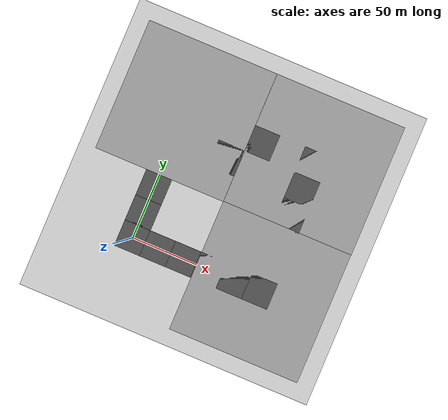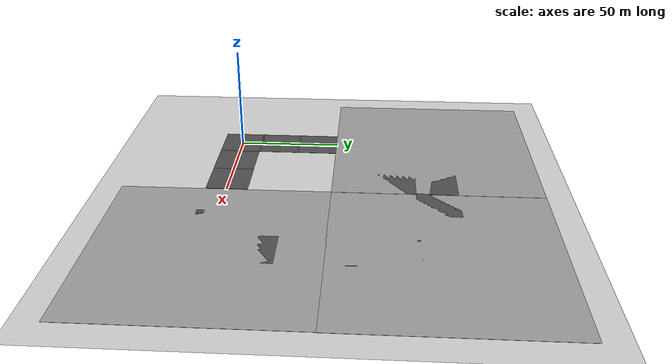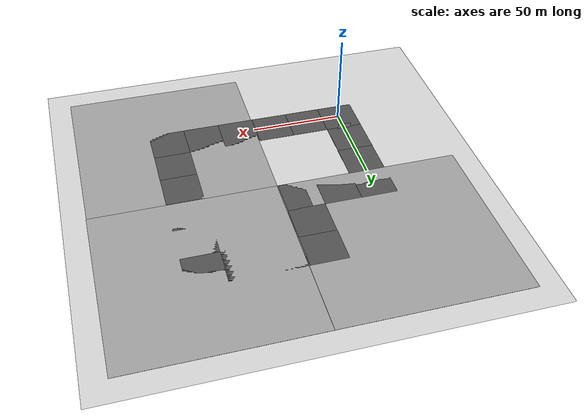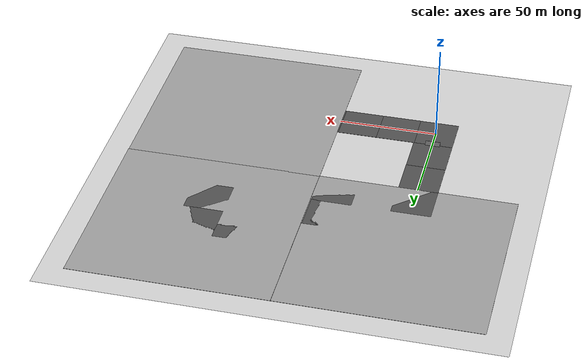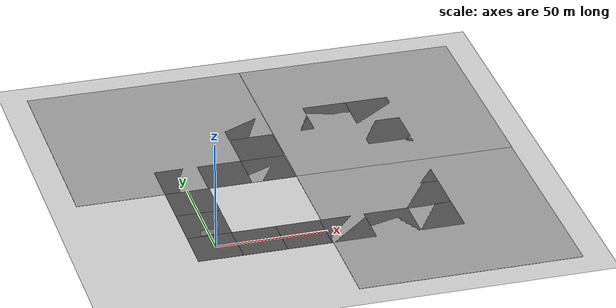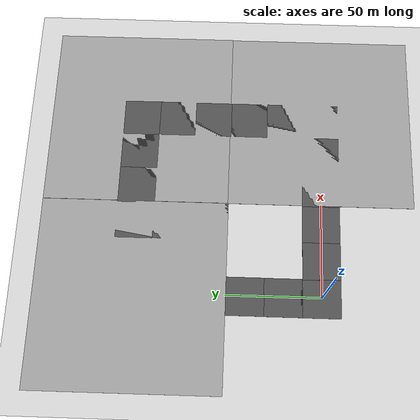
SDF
<sdf version="1.6">
 <world name="default">
  <light name="sun" type="directional">
   <pose>0 0 10 0 -0 0</pose>
   <diffuse>0.8 0.8 0.8 1</diffuse>
   <specular>0.2 0.2 0.2 1</specular>
   <attenuation>
    <range>1000</range>
    <constant>0.9</constant>
    <linear>0.01</linear>
    <quadratic>0.001</quadratic>
   </attenuation>
   <direction>-0.5 0.1 -0.9</direction>
  </light>
  <model name="ground_plane">
   <static>1</static>
   <link name="link">
    <collision name="collision">
     <geometry><plane><normal>0 0 1</normal><size>100 100</size></plane></geometry>
     <surface><friction><ode><mu>100</mu><mu2>50</mu2></ode></friction></surface>
    </collision>
    <visual name="visual">
     <cast_shadows>0</cast_shadows>
     <geometry><plane><normal>0 0 1</normal><size>100 100</size></plane></geometry>
     <material>
      <script><uri>file://media/materials/scripts/gazebo.material</uri><name>Gazebo/Grey</name></script>
     </material>
    </visual>
   </link>
  </model>
  <gravity>0 0 -9.8</gravity>
  <magnetic_field>6e-06 2.3e-05 -4.2e-05</magnetic_field>
  <atmosphere type="adiabatic"/>
  <physics name="default_physics" default="0" type="ode">
   <max_step_size>0.001</max_step_size>
   <real_time_factor>1</real_time_factor>
   <real_time_update_rate>1000</real_time_update_rate>
  </physics>
  <scene><ambient>0.4 0.4 0.4 1</ambient><background>0.7 0.7 0.7 1</background><shadows>1</shadows></scene>
  <audio><device>default</device></audio>
  <spherical_coordinates>
   <surface_model>EARTH_WGS84</surface_model>
   <latitude_deg>0</latitude_deg>
   <longitude_deg>0</longitude_deg>
   <elevation>0</elevation>
   <heading_deg>0</heading_deg>
  </spherical_coordinates>
  <model name="asphalt_plane">
   <static>1</static>
   <link name="link">
    <collision name="collision"><geometry><box><size>20 20 0.1</size></box></geometry></collision>
    <visual name="visual">
     <cast_shadows>0</cast_shadows>
     <geometry><box><size>20 20 0.1</size></box></geometry>
     <material>
      <script>
       <uri>model://asphalt_plane/materials/scripts</uri>
       <uri>model://asphalt_plane/materials/textures</uri>
       <name>vrc/asphalt</name>
      </script>
     </material>
    </visual>
   </link>
   <pose>-0.307951 0.041854 0 0 -0 0</pose>
  </model>
  <model name="asphalt_plane_clone">
   <static>1</static>
   <link name="link">
    <collision name="collision"><geometry><box><size>20 20 0.1</size></box></geometry></collision>
    <visual name="visual">
     <cast_shadows>0</cast_shadows>
     <geometry><box><size>20 20 0.1</size></box></geometry>
     <material>
      <script>
       <uri>model://asphalt_plane/materials/scripts</uri>
       <uri>model://asphalt_plane/materials/textures</uri>
       <name>vrc/asphalt</name>
      </script>
     </material>
    </visual>
   </link>
   <pose>19.3698 -0.017446 0 0 -0 0</pose>
  </model>
  <model name="asphalt_plane_clone_0">
   <static>1</static>
   <link name="link">
    <collision name="collision"><geometry><box><size>20 20 0.1</size></box></geometry></collision>
    <visual name="visual">
     <cast_shadows>0</cast_shadows>
     <geometry><box><size>20 20 0.1</size></box></geometry>
     <material>
      <script>
       <uri>model://asphalt_plane/materials/scripts</uri>
       <uri>model://asphalt_plane/materials/textures</uri>
       <name>vrc/asphalt</name>
      </script>
     </material>
    </visual>
   </link>
   <pose>39.3119 0.01957 0 0 -0 0</pose>
  </model>
  <model name="ground_plane_0">
   <static>1</static>
   <link name="link">
    <collision name="collision">
     <geometry><plane><normal>0 0 1</normal><size>100 100</size></plane></geometry>
     <surface>
      <contact><collide_bitmask>65535</collide_bitmask></contact>
      <friction><ode><mu>100</mu><mu2>50</mu2></ode></friction>
     </surface>
    </collision>
    <visual name="visual">
     <cast_shadows>0</cast_shadows>
     <geometry><plane><normal>0 0 1</normal><size>100 100</size></plane></geometry>
     <material>
      <script><uri>file://media/materials/scripts/gazebo.material</uri><name>Gazebo/Grey</name></script>
     </material>
    </visual>
   </link>
   <pose>99.8119 -0.012743 0 0 -0 0</pose>
  </model>
  <model name="ground_plane_1">
   <static>1</static>
   <link name="link">
    <collision name="collision">
     <geometry><plane><normal>0 0 1</normal><size>100 100</size></plane></geometry>
     <surface>
      <contact><collide_bitmask>65535</collide_bitmask></contact>
      <friction><ode><mu>100</mu><mu2>50</mu2></ode></friction>
     </surface>
    </collision>
    <visual name="visual">
     <cast_shadows>0</cast_shadows>
     <geometry><plane><normal>0 0 1</normal><size>100 100</size></plane></geometry>
     <material>
      <script><uri>file://media/materials/scripts/gazebo.material</uri><name>Gazebo/Grey</name></script>
     </material>
    </visual>
   </link>
   <pose>-0.11187 99.6243 0 0 -0 0</pose>
  </model>
  <model name="ground_plane_2">
   <static>1</static>
   <link name="link">
    <collision name="collision">
     <geometry><plane><normal>0 0 1</normal><size>100 100</size></plane></geometry>
     <surface>
      <contact><collide_bitmask>65535</collide_bitmask></contact>
      <friction><ode><mu>100</mu><mu2>50</mu2></ode></friction>
     </surface>
    </collision>
    <visual name="visual">
     <cast_shadows>0</cast_shadows>
     <geometry><plane><normal>0 0 1</normal><size>100 100</size></plane></geometry>
     <material>
      <script><uri>file://media/materials/scripts/gazebo.material</uri><name>Gazebo/Grey</name></script>
     </material>
    </visual>
   </link>
   <pose>99.9943 99.6471 0 0 -0 0</pose>
  </model>
  <model name="asphalt_plane_0">
   <static>1</static>
   <link name="link">
    <collision name="collision"><geometry><box><size>20 20 0.1</size></box></geometry></collision>
    <visual name="visual">
     <cast_shadows>0</cast_shadows>
     <geometry><box><size>20 20 0.1</size></box></geometry>
     <material>
      <script>
       <uri>model://asphalt_plane/materials/scripts</uri>
       <uri>model://asphalt_plane/materials/textures</uri>
       <name>vrc/asphalt</name>
      </script>
     </material>
    </visual>
   </link>
   <pose>59.262 0.044241 0 0 -0 0</pose>
  </model>
  <model name="asphalt_plane_clone_1">
   <static>1</static>
   <link name="link">
    <collision name="collision"><geometry><box><size>20 20 0.1</size></box></geometry></collision>
    <visual name="visual">
     <cast_shadows>0</cast_shadows>
     <geometry><box><size>20 20 0.1</size></box></geometry>
     <material>
      <script>
       <uri>model://asphalt_plane/materials/scripts</uri>
       <uri>model://asphalt_plane/materials/textures</uri>
       <name>vrc/asphalt</name>
      </script>
     </material>
    </visual>
   </link>
   <pose>79.2518 0.06356 0 0 -0 0</pose>
  </model>
  <model name="asphalt_plane_clone_2">
   <static>1</static>
   <link name="link">
    <collision name="collision"><geometry><box><size>20 20 0.1</size></box></geometry></collision>
    <visual name="visual">
     <cast_shadows>0</cast_shadows>
     <geometry><box><size>20 20 0.1</size></box></geometry>
     <material>
      <script>
       <uri>model://asphalt_plane/materials/scripts</uri>
       <uri>model://asphalt_plane/materials/textures</uri>
       <name>vrc/asphalt</name>
      </script>
     </material>
    </visual>
   </link>
   <pose>99.1357 0.118638 0 0 -0 0</pose>
  </model>
  <model name="asphalt_plane_clone_3">
   <static>1</static>
   <link name="link">
    <collision name="collision"><geometry><box><size>20 20 0.1</size></box></geometry></collision>
    <visual name="visual">
     <cast_shadows>0</cast_shadows>
     <geometry><box><size>20 20 0.1</size></box></geometry>
     <material>
      <script>
       <uri>model://asphalt_plane/materials/scripts</uri>
       <uri>model://asphalt_plane/materials/textures</uri>
       <name>vrc/asphalt</name>
      </script>
     </material>
    </visual>
   </link>
   <pose>99.0662 19.467 0 0 -0 0</pose>
  </model>
  <model name="asphalt_plane_clone_2_clone">
   <static>1</static>
   <link name="link">
    <collision name="collision"><geometry><box><size>20 20 0.1</size></box></geometry></collision>
    <visual name="visual">
     <cast_shadows>0</cast_shadows>
     <geometry><box><size>20 20 0.1</size></box></geometry>
     <material>
      <script>
       <uri>model://asphalt_plane/materials/scripts</uri>
       <uri>model://asphalt_plane/materials/textures</uri>
       <name>vrc/asphalt</name>
      </script>
     </material>
    </visual>
   </link>
   <pose>99.0078 39.3736 0 0 -0 0</pose>
  </model>
  <model name="asphalt_plane_clone_2_clone_0">
   <static>1</static>
   <link name="link">
    <collision name="collision"><geometry><box><size>20 20 0.1</size></box></geometry></collision>
    <visual name="visual">
     <cast_shadows>0</cast_shadows>
     <geometry><box><size>20 20 0.1</size></box></geometry>
     <material>
      <script>
       <uri>model://asphalt_plane/materials/scripts</uri>
       <uri>model://asphalt_plane/materials/textures</uri>
       <name>vrc/asphalt</name>
      </script>
     </material>
    </visual>
   </link>
   <pose>98.978 59.3651 0 0 -0 0</pose>
  </model>
  <model name="asphalt_plane_clone_2_clone_1">
   <static>1</static>
   <link name="link">
    <collision name="collision"><geometry><box><size>20 20 0.1</size></box></geometry></collision>
    <visual name="visual">
     <cast_shadows>0</cast_shadows>
     <geometry><box><size>20 20 0.1</size></box></geometry>
     <material>
      <script>
       <uri>model://asphalt_plane/materials/scripts</uri>
       <uri>model://asphalt_plane/materials/textures</uri>
       <name>vrc/asphalt</name>
      </script>
     </material>
    </visual>
   </link>
   <pose>99.0673 79.3609 0 0 -0 0</pose>
  </model>
  <model name="asphalt_plane_clone_2_clone_2">
   <static>1</static>
   <link name="link">
    <collision name="collision"><geometry><box><size>20 20 0.1</size></box></geometry></collision>
    <visual name="visual">
     <cast_shadows>0</cast_shadows>
     <geometry><box><size>20 20 0.1</size></box></geometry>
     <material>
      <script>
       <uri>model://asphalt_plane/materials/scripts</uri>
       <uri>model://asphalt_plane/materials/textures</uri>
       <name>vrc/asphalt</name>
      </script>
     </material>
    </visual>
   </link>
   <pose>99.0283 99.262 0 0 -0 0</pose>
  </model>
  <model name="asphalt_plane_clone_2_clone_3">
   <static>1</static>
   <link name="link">
    <collision name="collision"><geometry><box><size>20 20 0.1</size></box></geometry></collision>
    <visual name="visual">
     <cast_shadows>0</cast_shadows>
     <geometry><box><size>20 20 0.1</size></box></geometry>
     <material>
      <script>
       <uri>model://asphalt_plane/materials/scripts</uri>
       <uri>model://asphalt_plane/materials/textures</uri>
       <name>vrc/asphalt</name>
      </script>
     </material>
    </visual>
   </link>
   <pose>79.2028 99.323 0 0 -0 0</pose>
  </model>
  <model name="asphalt_plane_clone_2_clone_4">
   <static>1</static>
   <link name="link">
    <collision name="collision"><geometry><box><size>20 20 0.1</size></box></geometry></collision>
    <visual name="visual">
     <cast_shadows>0</cast_shadows>
     <geometry><box><size>20 20 0.1</size></box></geometry>
     <material>
      <script>
       <uri>model://asphalt_plane/materials/scripts</uri>
       <uri>model://asphalt_plane/materials/textures</uri>
       <name>vrc/asphalt</name>
      </script>
     </material>
    </visual>
   </link>
   <pose>59.2136 99.3537 0 0 -0 0</pose>
  </model>
  <model name="asphalt_plane_clone_2_clone_5">
   <static>1</static>
   <link name="link">
    <collision name="collision"><geometry><box><size>20 20 0.1</size></box></geometry></collision>
    <visual name="visual">
     <cast_shadows>0</cast_shadows>
     <geometry><box><size>20 20 0.1</size></box></geometry>
     <material>
      <script>
       <uri>model://asphalt_plane/materials/scripts</uri>
       <uri>model://asphalt_plane/materials/textures</uri>
       <name>vrc/asphalt</name>
      </script>
     </material>
    </visual>
   </link>
   <pose>39.4185 99.251 0 0 -0 0</pose>
  </model>
  <model name="asphalt_plane_clone_2_clone_6">
   <static>1</static>
   <link name="link">
    <collision name="collision"><geometry><box><size>20 20 0.1</size></box></geometry></collision>
    <visual name="visual">
     <cast_shadows>0</cast_shadows>
     <geometry><box><size>20 20 0.1</size></box></geometry>
     <material>
      <script>
       <uri>model://asphalt_plane/materials/scripts</uri>
       <uri>model://asphalt_plane/materials/textures</uri>
       <name>vrc/asphalt</name>
      </script>
     </material>
    </visual>
   </link>
   <pose>39.5213 79.4558 0 0 -0 0</pose>
  </model>
  <model name="asphalt_plane_clone_2_clone_7">
   <static>1</static>
   <link name="link">
    <collision name="collision"><geometry><box><size>20 20 0.1</size></box></geometry></collision>
    <visual name="visual">
     <cast_shadows>0</cast_shadows>
     <geometry><box><size>20 20 0.1</size></box></geometry>
     <material>
      <script>
       <uri>model://asphalt_plane/materials/scripts</uri>
       <uri>model://asphalt_plane/materials/textures</uri>
       <name>vrc/asphalt</name>
      </script>
     </material>
    </visual>
   </link>
   <pose>39.43 59.7941 0 0 -0 0</pose>
  </model>
  <model name="asphalt_plane_clone_2_clone_8">
   <static>1</static>
   <link name="link">
    <collision name="collision"><geometry><box><size>20 20 0.1</size></box></geometry></collision>
    <visual name="visual">
     <cast_shadows>0</cast_shadows>
     <geometry><box><size>20 20 0.1</size></box></geometry>
     <material>
      <script>
       <uri>model://asphalt_plane/materials/scripts</uri>
       <uri>model://asphalt_plane/materials/textures</uri>
       <name>vrc/asphalt</name>
      </script>
     </material>
    </visual>
   </link>
   <pose>19.4711 59.661 0 0 -0 0</pose>
  </model>
  <model name="asphalt_plane_clone_2_clone_9">
   <static>1</static>
   <link name="link">
    <collision name="collision"><geometry><box><size>20 20 0.1</size></box></geometry></collision>
    <visual name="visual">
     <cast_shadows>0</cast_shadows>
     <geometry><box><size>20 20 0.1</size></box></geometry>
     <material>
      <script>
       <uri>model://asphalt_plane/materials/scripts</uri>
       <uri>model://asphalt_plane/materials/textures</uri>
       <name>vrc/asphalt</name>
      </script>
     </material>
    </visual>
   </link>
   <pose>-0.190606 59.7523 0 0 -0 0</pose>
  </model>
  <model name="asphalt_plane_clone_2_clone_10">
   <static>1</static>
   <link name="link">
    <collision name="collision"><geometry><box><size>20 20 0.1</size></box></geometry></collision>
    <visual name="visual">
     <cast_shadows>0</cast_shadows>
     <geometry><box><size>20 20 0.1</size></box></geometry>
     <material>
      <script>
       <uri>model://asphalt_plane/materials/scripts</uri>
       <uri>model://asphalt_plane/materials/textures</uri>
       <name>vrc/asphalt</name>
      </script>
     </material>
    </visual>
   </link>
   <pose>-0.282302 19.9376 0 0 -0 0</pose>
  </model>
  <model name="asphalt_plane_clone_2_clone_11">
   <static>1</static>
   <link name="link">
    <collision name="collision"><geometry><box><size>20 20 0.1</size></box></geometry></collision>
    <visual name="visual">
     <cast_shadows>0</cast_shadows>
     <geometry><box><size>20 20 0.1</size></box></geometry>
     <material>
      <script>
       <uri>model://asphalt_plane/materials/scripts</uri>
       <uri>model://asphalt_plane/materials/textures</uri>
       <name>vrc/asphalt</name>
      </script>
     </material>
    </visual>
   </link>
   <pose>-0.221319 39.7631 0 0 -0 0</pose>
  </model>
  <model name="grey_wall">
   <static>1</static>
   <link name="link">
    <pose>0 0 1.4 0 -0 0</pose>
    <collision name="collision"><geometry><box><size>7.5 0.2 2.8</size></box></geometry></collision>
    <visual name="visual">
     <cast_shadows>0</cast_shadows>
     <geometry><box><size>7.5 0.2 2.8</size></box></geometry>
     <material>
      <script>
       <uri>model://grey_wall/materials/scripts</uri>
       <uri>model://grey_wall/materials/textures</uri>
       <name>vrc/grey_wall</name>
      </script>
     </material>
    </visual>
   </link>
   <pose>-0.255143 10.6772 0 0 -0 0</pose>
  </model>
 </world>
</sdf>
